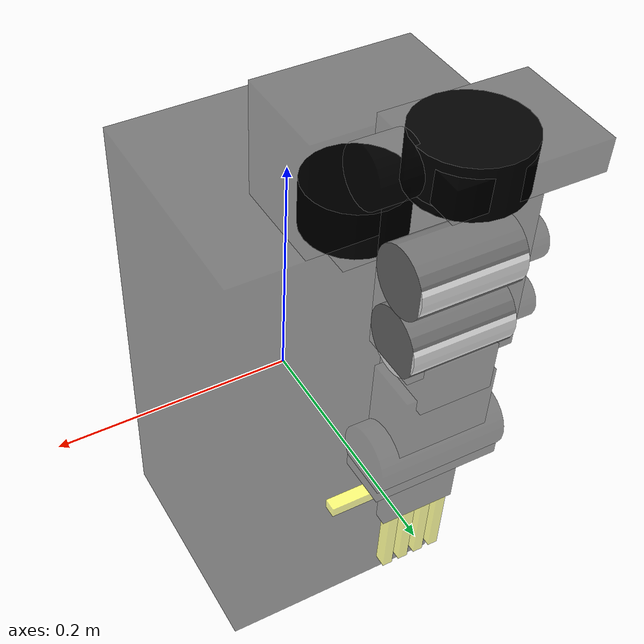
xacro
<?xml version="1.0"?>
<robot xmlns:xacro="http://www.ros.org/wiki/xacro" name="robbie">
  <xacro:arg name="initial_positions_file" default="initial_positions.yaml"/>
  <xacro:arg name="use_real_hardware" default="false"/>
  <xacro:arg name="controller_file" default=""/>
  <xacro:include filename="$(find my_robot_description)/urdf/robbie.urdf"/>
  <xacro:include filename="$(find my_robot_description)/urdf/ros2_control.xacro"/>
  <xacro:include filename="$(find my_robot_description)/urdf/gazebo.xacro"/>
</robot>

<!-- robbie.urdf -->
<robot name="robbie">
    <material name="blue">
      <color rgba="0 0 0.8 1"/>
    </material>
    <material name="black">
      <color rgba="0 0 0 1"/>
    </material>
    <material name="white">
      <color rgba="1 1 1 1"/>
    </material>
    <material name="grey">
      <color rgba ="0 0 0 0.5"/>
    </material>
    <material name="yellow">
      <color rgba ="1 1 0 0.5"/>
    </material>

    <link name="world"/>

    <link name="base_link">
      <visual>
        <origin xyz="0 0 0" rpy="0 0 0"/>
        <geometry>
          <box size="0.2 0.20 0.41"/>
        </geometry>
        <material name="grey"/>
      </visual>
      <visual>
        <origin xyz="0 0.07 0.21" rpy="0 0 0"/>
        <geometry>
          <box size="0.05 0.1 0.01"/>
        </geometry>
        <material name="grey"/>
      </visual>
      <collision>
        <geometry>
          <box size="0.07 0.20 0.405"/>
        </geometry>
      </collision>
      <collision>
        <geometry>
          <box size="0.10 0.05 0.01"/>
        </geometry>
      </collision>
      <inertial>
        <mass value="0.001"/>
        <inertia ixx="0.001" ixy="0" ixz="0" iyy="0.001" iyz="0" izz="0.001"/>
      </inertial>
    </link>
    <joint name="world_to_base" type="fixed">
      <parent link="world"/>
      <child link="base_link"/>
      <origin xyz="0 0 0" rpy="0 0 0"/>
    </joint>

    <link name="link_0">
      <visual>
        <origin xyz="0 0 0" rpy="0 0 0"/>
        <geometry>
          <cylinder radius="0.0375" length="0.036"/>
        </geometry>
        <material name="black"/>
      </visual>
      <visual>
        <origin xyz="0 0.0 0.043" rpy="0 0 0"/>
        <geometry>
          <box size="0.115 0.075 0.085"/>
        </geometry>
        <material name="grey"/>
      </visual>
      <collision>
        <geometry>
          <cylinder radius="0.0375" length="0.036"/>
        </geometry>
      </collision>
      <collision>
        <geometry>
          <box size="0.115 0.075 0.055"/>
        </geometry>
      </collision>
      <inertial>
        <mass value="1"/>
        <inertia ixx="0.00064294375" ixy="0" ixz="0" iyy="0.00083294375" iyz="0" izz="0.0009634374999999999"/>
      </inertial>
    </link>

    <joint name="shoulder_roll" type="revolute">
      <parent link="base_link"/>
      <child link="link_0"/>
      <origin xyz="0 0.09 0.233" rpy="0 0 0"/>
      <axis xyz="0 0 1"/>  <!-- Rotate around z-axis at this point -->
      <limit lower="-1.570795" upper="1.570795" velocity="26" effort="3.0"/>
      <dynamics damping="0.5" friction="0.1"/>
    </joint>

    <link name="link_1">
      <visual>
        <origin xyz="0 0 0" rpy="0 0 0"/>
        <geometry>
          <cylinder radius="0.02" length="0.03"/>
        </geometry>
        <material name="grey"/>
      </visual>
      <visual>
        <origin xyz="0 +0.006 +0.0675" rpy="0 0 1.5806"/>
        <geometry>
          <box size="0.08 0.023 0.105"/>
        </geometry>
        <material name="grey"/>
      </visual>
      <collision>
        <geometry>
          <cylinder radius="0.02" length="0.03"/>
        </geometry>
      </collision>
      <collision>
        <geometry>
          <box size="0.08 0.023 0.105"/>
        </geometry>
      </collision>
      <inertial>
        <mass value="0.6"/>
        <inertia ixx="0.0001837" ixy="0" ixz="0" iyy="0.0001452" iyz="0" izz=" 0.0002452"/>
      </inertial>
    </link>

    <joint name="shoulder_pitch" type="revolute">
      <parent link="link_0"/>
      <child link="link_1"/>
      <origin xyz="0.03 0.0725 0.083" rpy="0 -1.5806 0"/>
      <axis xyz="0 0 1"/>  <!-- Rotate around z-axis at this point -->
      <limit lower="-1.570795" upper="1.570795" velocity="26" effort="3.0"/>
      <dynamics damping="0.5" friction="0.1"/>  <!-- ← add this -->
    </joint>

    <link name="link_2">
      <visual>
        <origin xyz="0 0 0.08" rpy="0 0 0"/>
        <geometry>
          <cylinder radius="0.0375" length="0.036"/>
        </geometry>
        <material name="black"/>
      </visual>
      <visual>
        <origin xyz="0 0 0" rpy="0 0 0"/>
        <geometry>
          <box size="0.08 0.045 0.135"/>
        </geometry>
        <material name="grey"/>
      </visual>
      <collision>
        <geometry>
          <cylinder radius="0.0375" length="0.036"/>
        </geometry>
      </collision>
      <collision>
        <geometry>
          <box size="0.08 0.045 0.135"/>
        </geometry>
      </collision>
      <inertial>
        <mass value="0.8"/>
        <inertia ixx="0.00082794375" ixy="0" ixz="0" iyy="0.00093731875" iyz="0" izz="0.0007028125"/>
      </inertial>
    </link>

    <joint name="elbow_roll" type="revolute">
      <parent link="link_1"/>
      <child link="link_2"/>
      <origin xyz="-0.08 0.01 0.05" rpy="0 1.5806 0"/>
      <axis xyz="0 0 1"/>  <!-- Rotate around z-axis at this point -->
      <limit lower="-1.570795" upper="1.570795" velocity="60" effort="2.0"/>
      <dynamics damping="0.5" friction="0.1"/>  <!-- ← add this -->
    </joint>

    <link name="link_3">
      <visual>
        <origin xyz="0 0 0.05" rpy="0 0 0"/>
        <geometry>
          <cylinder radius="0.0157" length="0.022"/>
        </geometry>
        <material name="grey"/>
      </visual>
      <visual>
        <origin xyz="0 0 0" rpy="0 0 0"/>
        <geometry>
          <cylinder radius="0.025" length="0.077"/>
        </geometry>
        <material name="white"/>
      </visual>
      <visual>
        <origin xyz="-0.03 0 0" rpy="0 0 0"/>
        <geometry>
          <box size="0.04 0.05 0.055"/>
        </geometry>
        <material name="grey"/>
      </visual>
      <collision>
        <geometry>
          <box size="0.04 0.05 0.055"/>
        </geometry>
      </collision>
      <inertial>
        <mass value="0.9"/>
        <inertia ixx="0.0116" ixy="0" ixz="0" iyy="0.00103" iyz="0" izz="0.0108"/>
      </inertial>
    </link>

    <joint name="elbow_pitch" type="revolute">
      <parent link="link_2"/>
      <child link="link_3"/>
      <origin xyz="0 0 -0.05" rpy="0 -1.5806 0"/>
      <axis xyz="0 0 1"/>  <!-- Rotate around z-axis at this point -->
      <limit lower="-1.570795" upper="1.570795" velocity="60" effort="2.0"/>
      <dynamics damping="0.5" friction="0.1"/>  <!-- ← add this -->
    </joint>
    <link name="elbow_pitch_visual">
      <visual>
        <origin xyz="0 0 0" rpy="0 0 0"/>
        <geometry>
          <cylinder radius="0.025" length="0.077"/>
        </geometry>
        <material name="white"/>
      </visual>
      <visual>
        <origin xyz="0 0 0.05" rpy="0 0 0"/>
        <geometry>
          <cylinder radius="0.0157" length="0.022"/>
        </geometry>
        <material name="grey"/>
      </visual>
      <collision>
        <geometry>
          <cylinder radius="0.025" length="0.077"/>
        </geometry>
      </collision>
      <collision>
        <geometry>
          <cylinder radius="0.0157" length="0.022"/>
        </geometry>
      </collision>
      <inertial>
        <mass value="0.6"/>
        <inertia ixx="0.000325" ixy="0" ixz="0" iyy="0.0005414500000000001" iyz="0" izz="0.00037644999999999996"/>
      </inertial>
    </link>

    <joint name="elbow_pitch_visual_joint" type="revolute">
      <parent link="link_2"/>
      <child link="elbow_pitch_visual"/>
      <origin xyz="0 0 0" rpy="0 -1.5806 0"/>
      <axis xyz="0 0 1"/>
      <mimic joint="elbow_pitch" multiplier="1" offset="0"/>
      <limit lower="-1.570795" upper="1.570795" velocity="60" effort="2.0"/>
      <dynamics damping="0.5" friction="0.1"/>  <!-- ← add this -->
    </joint>

    <link name="link_4">
      <visual>
        <origin xyz="0 0 0" rpy="0 0 0"/>
        <geometry>
          <box size="0.077 0.04 0.07"/>
        </geometry>
        <material name="grey"/>
      </visual>
      <collision>
        <geometry>
          <box size="0.04 0.077 0.07"/>
        </geometry>
      </collision>
      <inertial>
        <mass value="0.6"/>
        <inertia ixx="0.000325" ixy="0" ixz="0" iyy="0.0005414500000000001" iyz="0" izz="0.00037644999999999996"/>
      </inertial>
    </link>

    <joint name="wrist_roll" type="revolute">
      <parent link="link_3"/>
      <child link="link_4"/>
      <origin xyz="-0.08 0 0" rpy="0 0 0"/>
      <axis xyz="1 0 0"/>  <!-- Rotate around z-axis at this point -->
      <limit lower="-1.570795" upper="1.570795" velocity="26" effort="3.0"/>
      <dynamics damping="0.5" friction="0.1"/>  <!-- ← add this -->
    </joint>

    <link name="link_5">
      <visual>
        <origin xyz="0 0 0" rpy="0 0 0"/>
        <geometry>
          <cylinder radius="0.025" length="0.1"/>
        </geometry>
        <material name="grey"/>
      </visual>
      <visual>
        <origin xyz="-0.02 0 0" rpy="0 0 -1.5806"/>
        <geometry>
          <box size="0.04 0.01 0.1"/>
        </geometry>
        <material name="grey"/>
      </visual>
      <collision>
        <geometry>
          <cylinder radius="0.025" length="0.1"/>
        </geometry>
      </collision>
      <collision>
        <geometry>
          <box size="0.04 0.01 0.1"/>
        </geometry>
      </collision>
      <inertial>
        <mass value="0.7"/>
        <inertia ixx="0.0012" ixy="0" ixz="0" iyy="0.0012" iyz="0" izz="0.0003"/>
      </inertial>
    </link>

    <joint name="wrist_pitch" type="revolute">
      <parent link="link_4"/>
      <child link="link_5"/>
      <origin xyz="-0.03 0 0" rpy="0 0 0"/>
      <axis xyz="0 0 1"/>  <!-- Rotate around z-axis at this point -->
      <limit lower="-1.570795" upper="1.570795" velocity="26" effort="3.0"/>
      <dynamics damping="0.5" friction="0.1"/>  <!-- ← add this -->
    </joint>

    <link name="link_6">
      <visual>
        <origin xyz="-0.02 0.001 0" rpy="0 0 0"/>
        <geometry>
          <box size="0.06 0.01 0.06"/>
        </geometry>
        <material name="grey"/>
      </visual>
      <collision>
        <geometry>
          <box size="0.06 0.01 0.06"/>
        </geometry>
      </collision>
      <inertial>
        <mass value="0.6"/>
        <inertia ixx="0.000325" ixy="0" ixz="0" iyy="0.0005414500000000001" iyz="0" izz="0.00037644999999999996"/>
      </inertial>
    </link>

    <joint name="palm" type="fixed">
      <parent link="link_5"/>
      <child link="link_6"/>
      <origin xyz="-0.03 0 0" rpy="0 0 0"/>
      <dynamics damping="0.5" friction="0.1"/>  <!-- ← add this -->
    </joint>

    <link name="link_7">
      <visual>
        <origin xyz="0 0 0.03" rpy="0 1.5806 0"/>
        <geometry>
          <box size="0.06 0.01 0.008"/>
        </geometry>
        <material name="yellow"/>
      </visual>
      <visual>
        <origin xyz="-0.014 0 0.03" rpy="0 1.5806 0"/>
        <geometry>
          <box size="0.06 0.01 0.008"/>
        </geometry>
        <material name="yellow"/>
      </visual>
      <visual>
        <origin xyz="-0.028 0 0.03" rpy="0 1.5806 0"/>
        <geometry>
          <box size="0.06 0.01 0.008"/>
        </geometry>
        <material name="yellow"/>
      </visual>
      <visual>
        <origin xyz="-0.042 0 0.03" rpy="0 1.5806 0"/>
        <geometry>
          <box size="0.06 0.01 0.008"/>
        </geometry>
        <material name="yellow"/>
      </visual>
      <collision>
        <geometry>
          <box size="0.06 0.01 0.008"/>
        </geometry>
      </collision>
      <collision>
        <geometry>
          <box size="0.06 0.01 0.008"/>
        </geometry>
      </collision>
      <collision>
        <geometry>
          <box size="0.06 0.01 0.008"/>
        </geometry>
      </collision>
      <collision>
        <geometry>
          <box size="0.06 0.01 0.008"/>
        </geometry>
      </collision>
      <inertial>
        <mass value="0.6"/>
        <inertia ixx="0.000325" ixy="0" ixz="0" iyy="0.0005414500000000001" iyz="0" izz="0.00037644999999999996"/>
      </inertial>
    </link>

    <joint name="fingers" type="revolute">
      <parent link="link_6"/>
      <child link="link_7"/>
      <origin xyz="-0.05 0 -0.02" rpy="3.141593 1.5806 0"/>
      <axis xyz="1 0 0"/>  <!-- Rotate around z-axis at this point -->
      <limit lower="0" upper="1.570796" velocity="26" effort="3.0"/>
      <dynamics damping="0.5" friction="0.1"/>  <!-- ← add this -->
    </joint>

    <link name="link_8">
      <visual>
        <origin xyz="0.02 0 0" rpy="0 0 0"/>
        <geometry>
          <box size="0.06 0.01 0.008"/>
        </geometry>
        <material name="yellow"/>
      </visual>
      <collision>
        <geometry>
          <box size="0.06 0.01 0.008"/>
        </geometry>
      </collision>
      <inertial>
        <mass value="0.6"/>
        <inertia ixx="0.000325" ixy="0" ixz="0" iyy="0.0005414500000000001" iyz="0" izz="0.00037644999999999996"/>
      </inertial>
    </link>

    <joint name="thumb" type="revolute">
      <parent link="link_6"/>
      <child link="link_8"/>
      <origin xyz="-0.01 0 -0.025" rpy="0 1.570796 0"/>
      <axis xyz="0 0 1"/>  <!-- Rotate around z-axis at this point -->
      <limit lower="-1.570796" upper="1.570796" velocity="26" effort="3.0"/>
      <dynamics damping="0.5" friction="0.1"/>  <!-- ← add this -->
    </joint>

</robot>
